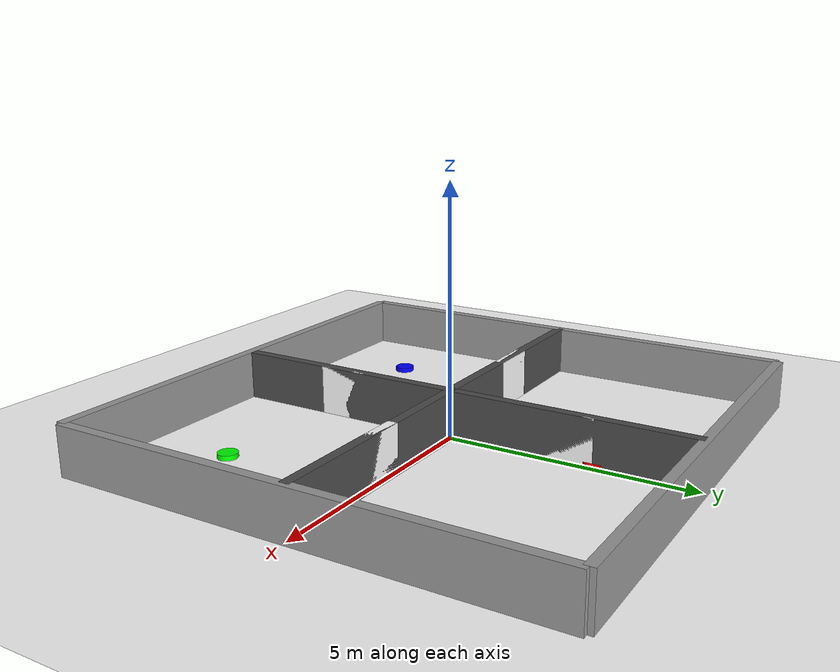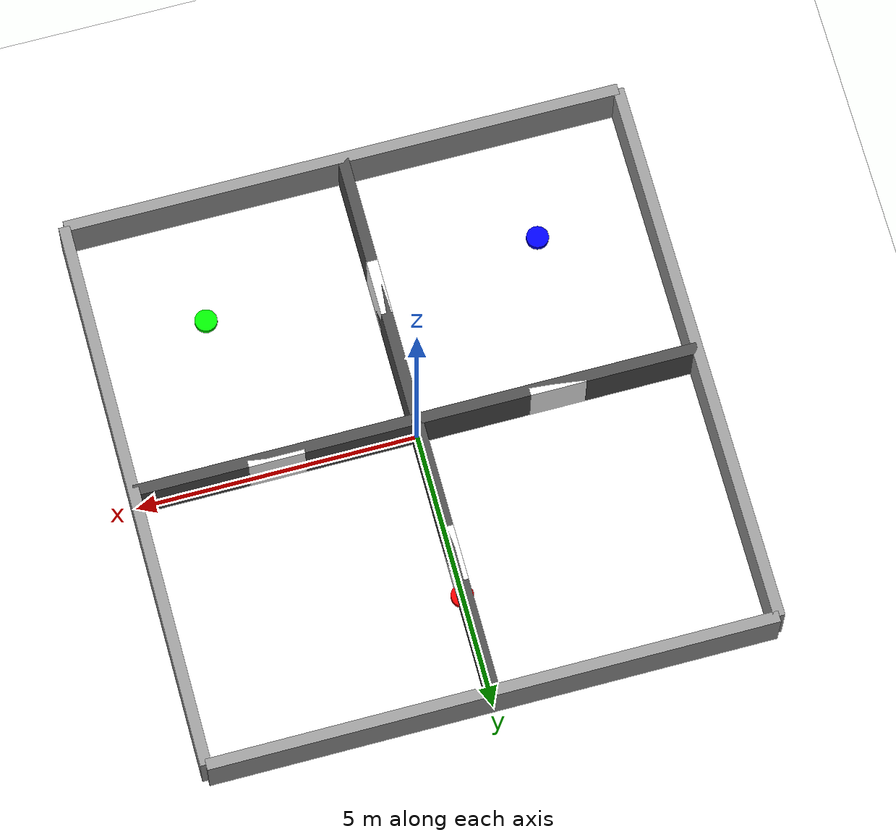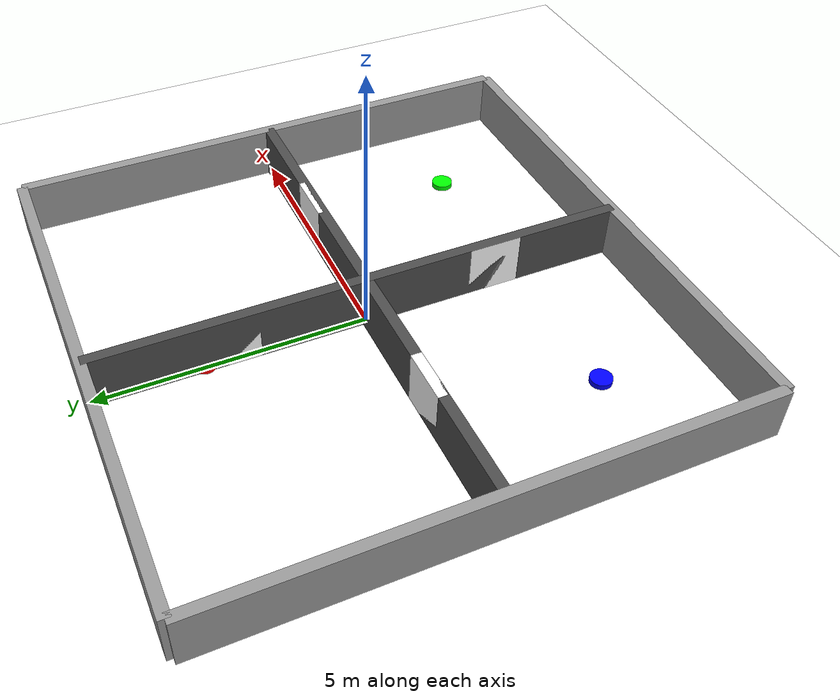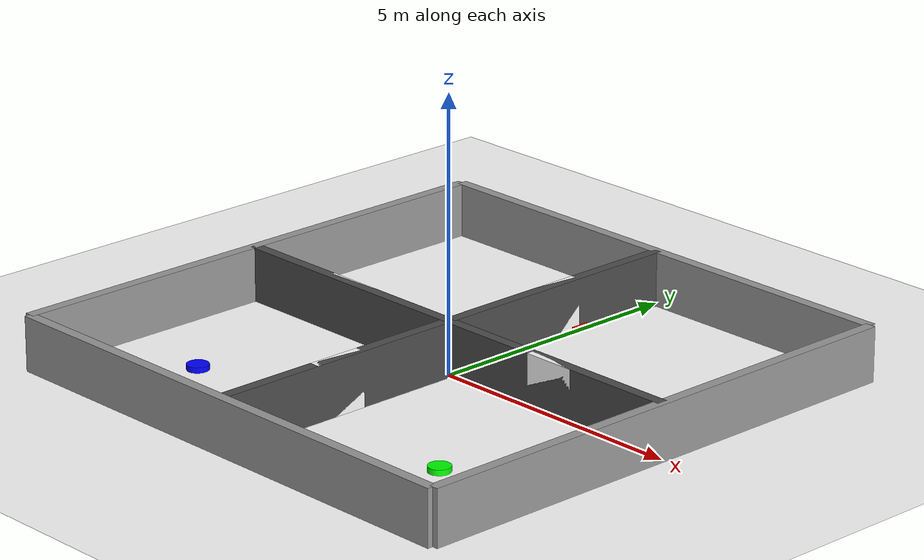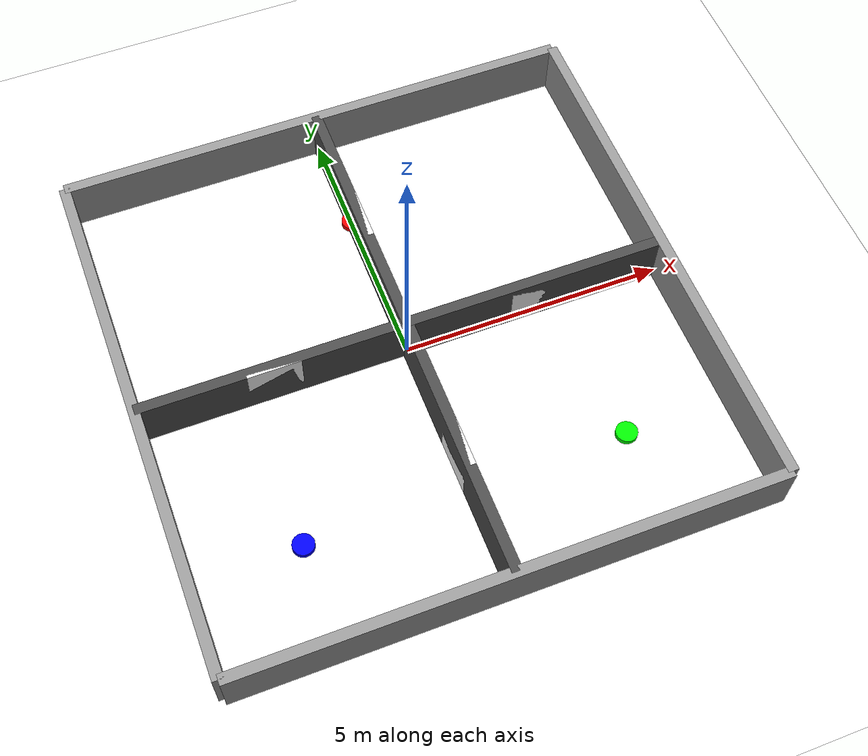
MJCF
<mujoco model="room">
  <asset>
    <!-- 占据图纹理 -->
    <texture name="explore_tex" type="2d" builtin="flat" width="512" height="512" rgb1="1 1 1" rgb2="1 1 1"/>
    <material name="explore_mat" texture="explore_tex" texrepeat="1 1"/>
  </asset>

  <worldbody>
    <!-- 摄像头 -->
    <camera name="top" pos="0 0 -2000" euler="-90 0 -90"/>

    <!-- 地面 -->
    <geom name="floor" type="plane" size="10 10 .1" material="explore_mat"/>

    <!-- 外围墙 -->
    <geom type="box" pos=" 0  5 0.5" size="5 0.1 0.5" rgba=".6 .6 .6 1"/>
    <geom type="box" pos=" 0 -5 0.5" size="5 0.1 0.5" rgba=".6 .6 .6 1"/>
    <geom type="box" pos="-5  0 0.5" size="0.1 5 0.5" rgba=".6 .6 .6 1"/>
    <geom type="box" pos=" 5  0 0.5" size="0.1 5 0.5" rgba=".6 .6 .6 1"/>

    <!-- 中间十字墙分房 -->
    <geom type="box" pos=" 0  0 0.5" size="5 0.1 0.5" rgba="0.3 0.3 0.3 1"/>  <!-- 横向 -->
    <geom type="box" pos=" 0  0 0.5" size="0.1 5 0.5" rgba="0.3 0.3 0.3 1"/>  <!-- 纵向 -->

    <!-- 留门口 -->
    <geom type="box" pos=" 0  2.5 0.5" size="0.1 0.5 0.5" rgba="1 1 1 1"/>   <!-- 上门 -->
    <geom type="box" pos=" 0 -2.5 0.5" size="0.1 0.5 0.5" rgba="1 1 1 1"/>   <!-- 下门 -->
    <geom type="box" pos=" 2.5 0 0.5" size="0.5 0.1 0.5" rgba="1 1 1 1"/>    <!-- 右门 -->
    <geom type="box" pos="-2.5 0 0.5" size="0.5 0.1 0.5" rgba="1 1 1 1"/>    <!-- 左门 -->

    <!-- 初始机器人 -->
    <body name="agent0" pos="-3 -3 0.1">
      <geom type="cylinder" size=".2 .05" rgba="0 0 1 1"/>
      <joint name="agent0_x" type="slide" axis="1 0 0"/>
      <joint name="agent0_y" type="slide" axis="0 1 0"/>
      <joint name="agent0_yaw" type="hinge" axis="0 0 1"/>
    </body>

    <body name="agent1" pos="3 -3 0.1">
      <geom type="cylinder" size=".2 .05" rgba="0 1 0 1"/>
      <joint name="agent1_x" type="slide" axis="1 0 0"/>
      <joint name="agent1_y" type="slide" axis="0 1 0"/>
      <joint name="agent1_yaw" type="hinge" axis="0 0 1"/>
    </body>

    <body name="agent2" pos="0 3 0.1">
      <geom type="cylinder" size=".2 .05" rgba="1 0 0 1"/>
      <joint name="agent2_x" type="slide" axis="1 0 0"/>
      <joint name="agent2_y" type="slide" axis="0 1 0"/>
      <joint name="agent2_yaw" type="hinge" axis="0 0 1"/>
    </body>

  </worldbody>
</mujoco>
